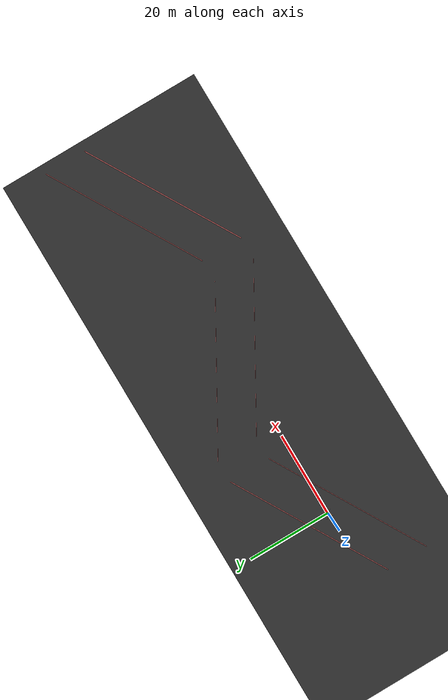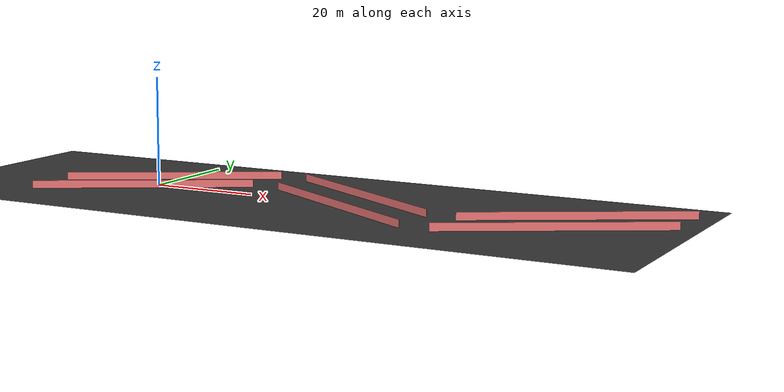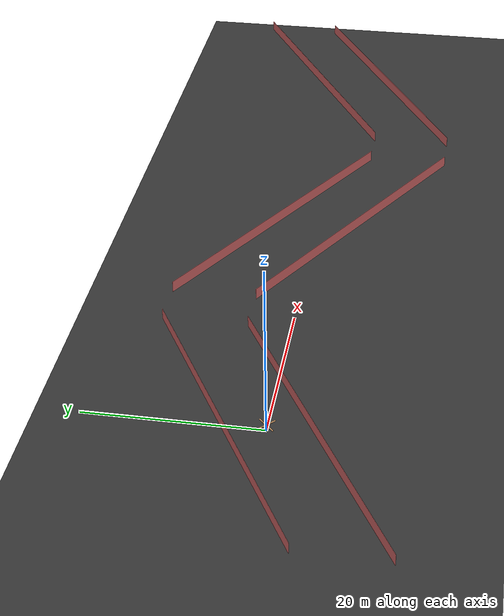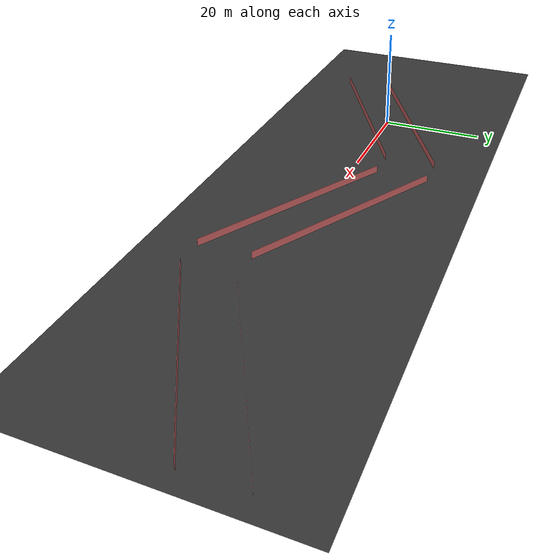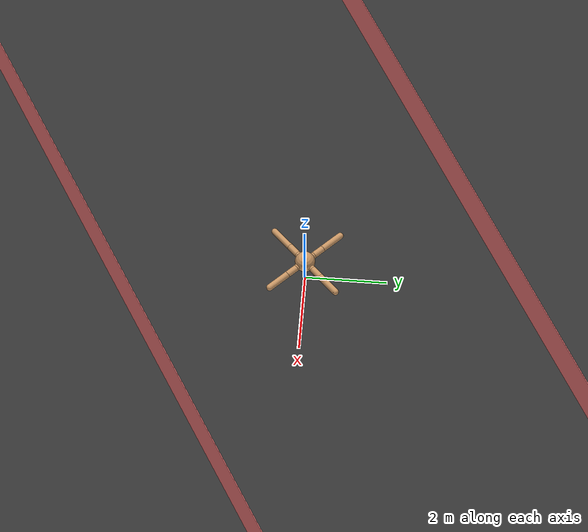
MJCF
<mujoco model="ant">
  <compiler angle="degree" coordinate="local" inertiafromgeom="true"/>
  <option integrator="RK4" timestep="0.01"/>
  <custom>
    <numeric data="0.0 0.0 0.55 1.0 0.0 0.0 0.0 0.0 1.0 0.0 -1.0 0.0 -1.0 0.0 1.0" name="init_qpos"/>
  </custom>
  <default>
    <joint armature="1" damping="1" limited="true"/>
    <geom conaffinity="0" condim="3" density="5.0" friction="1 0.5 0.5" margin="0.01" rgba="0.8 0.6 0.4 1"/>
  </default>
  <asset>
    <texture builtin="gradient" height="100" rgb1="1 1 1" rgb2="0 0 0" type="skybox" width="100"/>
    <texture builtin="flat" height="1278" mark="cross" markrgb="1 1 1" name="texgeom" random="0.01" rgb1="0.8 0.6 0.4" rgb2="0.8 0.6 0.4" type="cube" width="127"/>
    <texture builtin="checker" height="100" name="texplane" rgb1="#2c5987" rgb2="#1f4060" type="2d" width="100"/>
    <material name="MatPlane" reflectance="0.5" shininess="1" specular="1" texrepeat="60 60" texture="texplane"/>
    <texture builtin="checker" height="100" name="texbox" rgb1="#ff66ff" rgb2="#ff66ff" type="2d" width="100"/>
    <material name="BoxMat" reflectance="0.5" shininess="1" specular="1" texrepeat="60 60" texture="texbox"/>

    <material name="geom" texture="texgeom" texuniform="true"/>
  </asset>
  <worldbody>
    <light cutoff="100" diffuse="1 1 1" dir="-0 0 -1.3" directional="true" exponent="1" pos="0 0 1.3" specular=".1 .1 .1"/>
    <geom conaffinity="1" condim="3" material="MatPlane" name="floor" pos="30 0 0" rgba="0.2 0.2 0.2 1" size="70 25 40" type="plane"/>
    <body name="torso" pos="0 0 0.75">
      <camera name="track" mode="trackcom" pos="0 -10 -10" xyaxes=".8 .4 0 0 .4 .6"/>
      <geom name="torso_geom" pos="0 0 0" size="0.25" type="sphere"/>
      <joint armature="0" damping="0" limited="false" margin="0.01" name="root" pos="0 0 0" type="free"/>
      <body name="front_left_leg" pos="0 0 0">
        <geom fromto="0.0 0.0 0.0 0.2 0.2 0.0" name="aux_1_geom" size="0.08" type="capsule"/>
        <body name="aux_1" pos="0.2 0.2 0">
          <joint axis="0 0 1" name="hip_1" pos="0.0 0.0 0.0" range="-30 30" type="hinge"/>
          <geom fromto="0.0 0.0 0.0 0.2 0.2 0.0" name="left_leg_geom" size="0.08" type="capsule"/>
          <body pos="0.2 0.2 0">
            <joint axis="-1 1 0" name="ankle_1" pos="0.0 0.0 0.0" range="30 70" type="hinge"/>
            <geom fromto="0.0 0.0 0.0 0.4 0.4 0.0" name="left_ankle_geom" size="0.08" type="capsule"/>
          </body>
        </body>
      </body>
      <body name="front_right_leg" pos="0 0 0">
        <geom fromto="0.0 0.0 0.0 -0.2 0.2 0.0" name="aux_2_geom" size="0.08" type="capsule"/>
        <body name="aux_2" pos="-0.2 0.2 0">
          <joint axis="0 0 1" name="hip_2" pos="0.0 0.0 0.0" range="-30 30" type="hinge"/>
          <geom fromto="0.0 0.0 0.0 -0.2 0.2 0.0" name="right_leg_geom" size="0.08" type="capsule"/>
          <body pos="-0.2 0.2 0">
            <joint axis="1 1 0" name="ankle_2" pos="0.0 0.0 0.0" range="-70 -30" type="hinge"/>
            <geom fromto="0.0 0.0 0.0 -0.4 0.4 0.0" name="right_ankle_geom" size="0.08" type="capsule"/>
          </body>
        </body>
      </body>
      <body name="back_leg" pos="0 0 0">
        <geom fromto="0.0 0.0 0.0 -0.2 -0.2 0.0" name="aux_3_geom" size="0.08" type="capsule"/>
        <body name="aux_3" pos="-0.2 -0.2 0">
          <joint axis="0 0 1" name="hip_3" pos="0.0 0.0 0.0" range="-30 30" type="hinge"/>
          <geom fromto="0.0 0.0 0.0 -0.2 -0.2 0.0" name="back_leg_geom" size="0.08" type="capsule"/>
          <body pos="-0.2 -0.2 0">
            <joint axis="-1 1 0" name="ankle_3" pos="0.0 0.0 0.0" range="-70 -30" type="hinge"/>
            <geom fromto="0.0 0.0 0.0 -0.4 -0.4 0.0" name="third_ankle_geom" size="0.08" type="capsule"/>
          </body>
        </body>
      </body>
      <body name="right_back_leg" pos="0 0 0">
        <geom fromto="0.0 0.0 0.0 0.2 -0.2 0.0" name="aux_4_geom" size="0.08" type="capsule"/>
        <body name="aux_4" pos="0.2 -0.2 0">
          <joint axis="0 0 1" name="hip_4" pos="0.0 0.0 0.0" range="-30 30" type="hinge"/>
          <geom fromto="0.0 0.0 0.0 0.2 -0.2 0.0" name="rightback_leg_geom" size="0.08" type="capsule"/>
          <body pos="0.2 -0.2 0">
            <joint axis="1 1 0" name="ankle_4" pos="0.0 0.0 0.0" range="30 70" type="hinge"/>
            <geom fromto="0.0 0.0 0.0 0.4 -0.4 0.0" name="fourth_ankle_geom" size="0.08" type="capsule"/>
          </body>
        </body>
      </body>
    </body>

    <body name="torso2" pos="0 0 0.75">
      <geom name="torso_geom2" pos="0 0 0" size="0.25" type="sphere" rgba="0.5 0.1 0.1 1"/>
      <joint armature="0" damping="0" limited="false" margin="0.01" name="root2" pos="0 0 0" type="free"/>
      <body name="front_left_leg2" pos="0 0 0">
        <geom fromto="0.0 0.0 0.0 0.2 0.2 0.0" name="aux_1_geom2" size="0.08" type="capsule" rgba="0.5 0.1 0.1 1"/>
        <body name="aux_12" pos="0.2 0.2 0">
          <joint axis="0 0 1" name="hip_12" pos="0.0 0.0 0.0" range="-30 30" type="hinge"/>
          <geom fromto="0.0 0.0 0.0 0.2 0.2 0.0" name="left_leg_geom2" size="0.08" type="capsule" rgba="0.5 0.1 0.1 1"/>
          <body pos="0.2 0.2 0">
            <joint axis="-1 1 0" name="ankle_12" pos="0.0 0.0 0.0" range="30 70" type="hinge"/>
            <geom fromto="0.0 0.0 0.0 0.4 0.4 0.0" name="left_ankle_geom2" size="0.08" type="capsule" rgba="0.5 0.1 0.1 1"/>
          </body>
        </body>
      </body>
      <body name="front_right_leg2" pos="0 0 0">
        <geom fromto="0.0 0.0 0.0 -0.2 0.2 0.0" name="aux_2_geom2" size="0.08" type="capsule" rgba="0.5 0.1 0.1 1"/>
        <body name="aux_22" pos="-0.2 0.2 0">
          <joint axis="0 0 1" name="hip_22" pos="0.0 0.0 0.0" range="-30 30" type="hinge"/>
          <geom fromto="0.0 0.0 0.0 -0.2 0.2 0.0" name="right_leg_geom2" size="0.08" type="capsule" rgba="0.5 0.1 0.1 1"/>
          <body pos="-0.2 0.2 0">
            <joint axis="1 1 0" name="ankle_22" pos="0.0 0.0 0.0" range="-70 -30" type="hinge"/>
            <geom fromto="0.0 0.0 0.0 -0.4 0.4 0.0" name="right_ankle_geom2" size="0.08" type="capsule" rgba="0.5 0.1 0.1 1"/>
          </body>
        </body>
      </body>
      <body name="back_leg2" pos="0 0 0">
        <geom fromto="0.0 0.0 0.0 -0.2 -0.2 0.0" name="aux_3_geom2" size="0.08" type="capsule" rgba="0.5 0.1 0.1 1"/>
        <body name="aux_32" pos="-0.2 -0.2 0">
          <joint axis="0 0 1" name="hip_32" pos="0.0 0.0 0.0" range="-30 30" type="hinge"/>
          <geom fromto="0.0 0.0 0.0 -0.2 -0.2 0.0" name="back_leg_geom2" size="0.08" type="capsule" rgba="0.5 0.1 0.1 1"/>
          <body pos="-0.2 -0.2 0">
            <joint axis="-1 1 0" name="ankle_32" pos="0.0 0.0 0.0" range="-70 -30" type="hinge"/>
            <geom fromto="0.0 0.0 0.0 -0.4 -0.4 0.0" name="third_ankle_geom2" size="0.08" type="capsule" rgba="0.5 0.1 0.1 1"/>
          </body>
        </body>
      </body>
      <body name="right_back_leg2" pos="0 0 0">
        <geom fromto="0.0 0.0 0.0 0.2 -0.2 0.0" name="aux_4_geom2" size="0.08" type="capsule" rgba="0.5 0.1 0.1 1"/>
        <body name="aux_42" pos="0.2 -0.2 0">
          <joint axis="0 0 1" name="hip_42" pos="0.0 0.0 0.0" range="-30 30" type="hinge"/>
          <geom fromto="0.0 0.0 0.0 0.2 -0.2 0.0" name="rightback_leg_geom2" size="0.08" type="capsule" rgba="0.5 0.1 0.1 1"/>
          <body pos="0.2 -0.2 0">
            <joint axis="1 1 0" name="ankle_42" pos="0.0 0.0 0.0" range="30 70" type="hinge"/>
            <geom fromto="0.0 0.0 0.0 0.4 -0.4 0.0" name="fourth_ankle_geom2" size="0.08" type="capsule" rgba="0.5 0.1 0.1 1"/>
          </body>
        </body>
      </body>
    </body>

    <body name="torso3" pos="0 0 0.75">
      <geom name="torso_geom3" pos="0 0 0" size="0.25" type="sphere" rgba="0.1 0.5 0.1 1"/>
      <joint armature="0" damping="0" limited="false" margin="0.01" name="root3" pos="0 0 0" type="free"/>
      <body name="front_left_leg3" pos="0 0 0">
        <geom fromto="0.0 0.0 0.0 0.2 0.2 0.0" name="aux_1_geom3" size="0.08" type="capsule" rgba="0.1 0.5 0.1 1"/>
        <body name="aux_13" pos="0.2 0.2 0">
          <joint axis="0 0 1" name="hip_13" pos="0.0 0.0 0.0" range="-30 30" type="hinge"/>
          <geom fromto="0.0 0.0 0.0 0.2 0.2 0.0" name="left_leg_geom3" size="0.08" type="capsule" rgba="0.1 0.5 0.1 1"/>
          <body pos="0.2 0.2 0">
            <joint axis="-1 1 0" name="ankle_13" pos="0.0 0.0 0.0" range="30 70" type="hinge"/>
            <geom fromto="0.0 0.0 0.0 0.4 0.4 0.0" name="left_ankle_geom3" size="0.08" type="capsule" rgba="0.1 0.5 0.1 1"/>
          </body>
        </body>
      </body>
      <body name="front_right_leg3" pos="0 0 0">
        <geom fromto="0.0 0.0 0.0 -0.2 0.2 0.0" name="aux_2_geom3" size="0.08" type="capsule" rgba="0.1 0.5 0.1 1"/>
        <body name="aux_23" pos="-0.2 0.2 0">
          <joint axis="0 0 1" name="hip_23" pos="0.0 0.0 0.0" range="-30 30" type="hinge"/>
          <geom fromto="0.0 0.0 0.0 -0.2 0.2 0.0" name="right_leg_geom3" size="0.08" type="capsule" rgba="0.1 0.5 0.1 1"/>
          <body pos="-0.2 0.2 0">
            <joint axis="1 1 0" name="ankle_23" pos="0.0 0.0 0.0" range="-70 -30" type="hinge"/>
            <geom fromto="0.0 0.0 0.0 -0.4 0.4 0.0" name="right_ankle_geom3" size="0.08" type="capsule" rgba="0.1 0.5 0.1 1"/>
          </body>
        </body>
      </body>
      <body name="back_leg3" pos="0 0 0">
        <geom fromto="0.0 0.0 0.0 -0.2 -0.2 0.0" name="aux_3_geom3" size="0.08" type="capsule" rgba="0.1 0.5 0.1 1"/>
        <body name="aux_33" pos="-0.2 -0.2 0">
          <joint axis="0 0 1" name="hip_33" pos="0.0 0.0 0.0" range="-30 30" type="hinge"/>
          <geom fromto="0.0 0.0 0.0 -0.2 -0.2 0.0" name="back_leg_geom3" size="0.08" type="capsule" rgba="0.1 0.5 0.1 1"/>
          <body pos="-0.2 -0.2 0">
            <joint axis="-1 1 0" name="ankle_33" pos="0.0 0.0 0.0" range="-70 -30" type="hinge"/>
            <geom fromto="0.0 0.0 0.0 -0.4 -0.4 0.0" name="third_ankle_geom3" size="0.08" type="capsule" rgba="0.1 0.5 0.1 1"/>
          </body>
        </body>
      </body>
      <body name="right_back_leg3" pos="0 0 0">
        <geom fromto="0.0 0.0 0.0 0.2 -0.2 0.0" name="aux_4_geom3" size="0.08" type="capsule" rgba="0.1 0.5 0.1 1"/>
        <body name="aux_43" pos="0.2 -0.2 0">
          <joint axis="0 0 1" name="hip_43" pos="0.0 0.0 0.0" range="-30 30" type="hinge"/>
          <geom fromto="0.0 0.0 0.0 0.2 -0.2 0.0" name="rightback_leg_geom3" size="0.08" type="capsule" rgba="0.1 0.5 0.1 1"/>
          <body pos="0.2 -0.2 0">
            <joint axis="1 1 0" name="ankle_43" pos="0.0 0.0 0.0" range="30 70" type="hinge"/>
            <geom fromto="0.0 0.0 0.0 0.4 -0.4 0.0" name="fourth_ankle_geom3" size="0.08" type="capsule" rgba="0.1 0.5 0.1 1"/>
          </body>
        </body>
      </body>
    </body>

    <body name='b1' pos="0 5 1" euler='0 0 30'>
      <freejoint name="b1_fj"/>
      <geom conaffinity="1" condim="3" name="wall1" type="box" density=".000001" size="20 0.01 .7"    rgba="1 0.5 0.5 1"/>
    </body>
    <body name='b2' pos="0 -5 1" euler='0 0 30'>
      <freejoint name="b2_fj"/>
      <geom conaffinity="1" condim="3" name="wall2" type="box" density=".000001" size="20 0.01 .7"    rgba="1 0.5 0.5 1"/>
    </body>
    <body name='b3' pos="40 5 1" euler='0 0 -30'>
      <freejoint name="b3_fj"/>
      <geom conaffinity="1" condim="3" name="wall3" type="box" density=".000001" size="20 0.01 .7"    rgba="1 0.5 0.5 1"/>
    </body>
    <body name='b4' pos="40 -5 1" euler='0 0 -30'>
      <freejoint name="b4_fj"/>
      <geom conaffinity="1" condim="3" name="wall4" type="box" density=".000001" size="20 0.01 .7"    rgba="1 0.5 0.5 1"/>
    </body>
    <body name='b5' pos="80 5 1" euler='0 0 30'>
      <freejoint name="b5_fj"/>
      <geom conaffinity="1" condim="3" name="wall5" type="box" density=".000001" size="20 0.01 .7"    rgba="1 0.5 0.5 1"/>
    </body>
    <body name='b6' pos="80 -5 1" euler='0 0 30'>
      <freejoint name="b6_fj"/>
      <geom conaffinity="1" condim="3" name="wall6" type="box" density=".000001" size="20 0.01 .7"    rgba="1 0.5 0.5 1"/>
    </body>
  </worldbody>
  <actuator>
    <motor ctrllimited="true" ctrlrange="-1.0 1.0" joint="hip_4" gear="150"/>
    <motor ctrllimited="true" ctrlrange="-1.0 1.0" joint="ankle_4" gear="150"/>
    <motor ctrllimited="true" ctrlrange="-1.0 1.0" joint="hip_1" gear="150"/>
    <motor ctrllimited="true" ctrlrange="-1.0 1.0" joint="ankle_1" gear="150"/>
    <motor ctrllimited="true" ctrlrange="-1.0 1.0" joint="hip_2" gear="150"/>
    <motor ctrllimited="true" ctrlrange="-1.0 1.0" joint="ankle_2" gear="150"/>
    <motor ctrllimited="true" ctrlrange="-1.0 1.0" joint="hip_3" gear="150"/>
    <motor ctrllimited="true" ctrlrange="-1.0 1.0" joint="ankle_3" gear="150"/>

    <motor ctrllimited="true" ctrlrange="-1.0 1.0" joint="hip_42" gear="150"/>
    <motor ctrllimited="true" ctrlrange="-1.0 1.0" joint="ankle_42" gear="150"/>
    <motor ctrllimited="true" ctrlrange="-1.0 1.0" joint="hip_12" gear="150"/>
    <motor ctrllimited="true" ctrlrange="-1.0 1.0" joint="ankle_12" gear="150"/>
    <motor ctrllimited="true" ctrlrange="-1.0 1.0" joint="hip_22" gear="150"/>
    <motor ctrllimited="true" ctrlrange="-1.0 1.0" joint="ankle_22" gear="150"/>
    <motor ctrllimited="true" ctrlrange="-1.0 1.0" joint="hip_32" gear="150"/>
    <motor ctrllimited="true" ctrlrange="-1.0 1.0" joint="ankle_32" gear="150"/>

    <motor ctrllimited="true" ctrlrange="-1.0 1.0" joint="hip_43" gear="150"/>
    <motor ctrllimited="true" ctrlrange="-1.0 1.0" joint="ankle_43" gear="150"/>
    <motor ctrllimited="true" ctrlrange="-1.0 1.0" joint="hip_13" gear="150"/>
    <motor ctrllimited="true" ctrlrange="-1.0 1.0" joint="ankle_13" gear="150"/>
    <motor ctrllimited="true" ctrlrange="-1.0 1.0" joint="hip_23" gear="150"/>
    <motor ctrllimited="true" ctrlrange="-1.0 1.0" joint="ankle_23" gear="150"/>
    <motor ctrllimited="true" ctrlrange="-1.0 1.0" joint="hip_33" gear="150"/>
    <motor ctrllimited="true" ctrlrange="-1.0 1.0" joint="ankle_33" gear="150"/>
  </actuator>
</mujoco>
